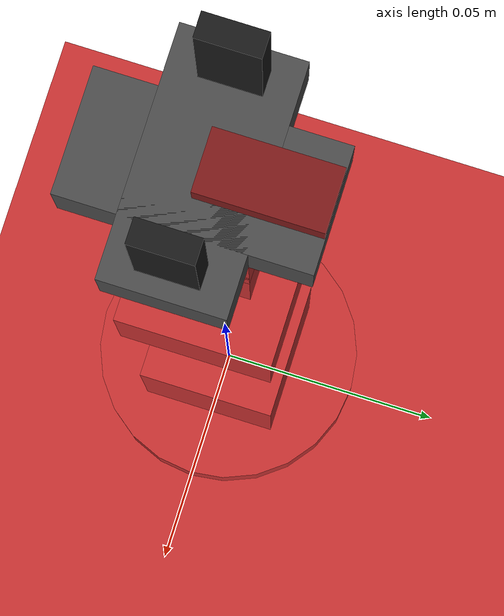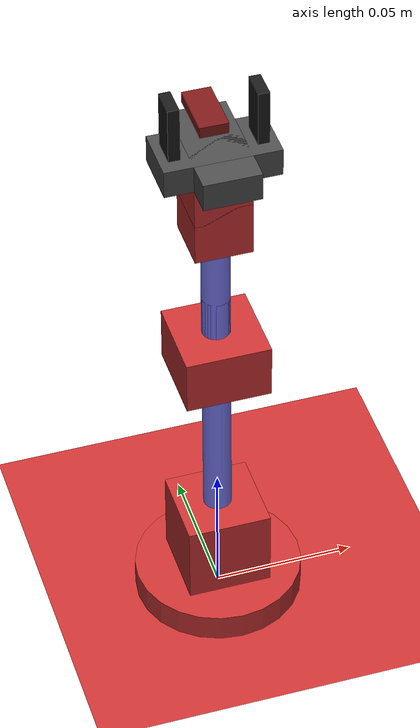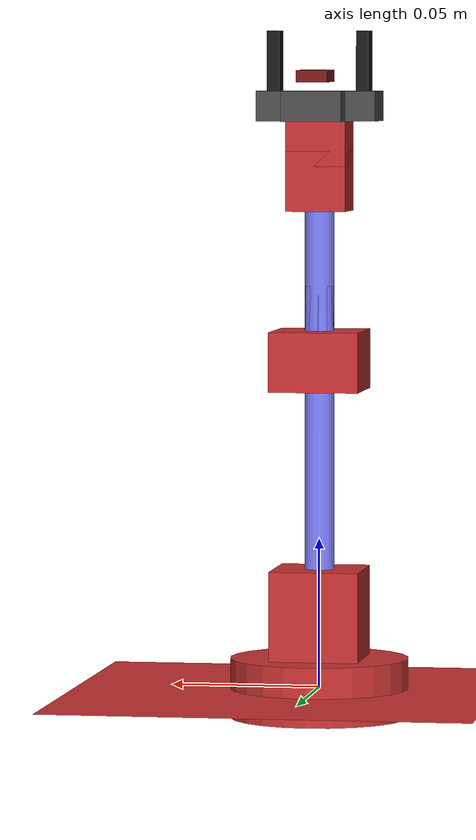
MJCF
<mujoco model="tinyarm_scene">
    <include file="follower_arm.xml"/>
    <include file="leader_arm.xml"/>

    <statistic extent="0.5" center="0 0 0.1"/>

    <visual>
        <headlight ambient=".4 .4 .4" diffuse=".8 .8 .8" specular="0.1 0.1 0.1"/>
        <map znear=".01"/>
        <quality shadowsize="2048"/>
    </visual>

    <asset>
        <texture type="skybox" builtin="gradient" rgb1="0.3 0.5 0.7" rgb2="0 0 0" width="512" height="512"/>
        <texture name="texplane" builtin="checker" rgb1=".2 .3 .4" rgb2=".1 .2 .3" type="2d" width="512" height="512"/>
        <material name="matplane" reflectance="0.3" texture="texplane" texrepeat="1 1" texuniform="true"/>
    </asset>

    <worldbody>
        <light directional="true" diffuse=".8 .8 .8" specular=".2 .2 .2" pos="0 0 5" dir="0 0 -1"/>
        <geom name="floor" pos="0 0 0" size="0 0 .25" type="plane" material="matplane"/>

        <!-- Position the arms in the scene -->
        <body name="follower_container" pos="-0.2 0 0">
            <include file="follower_arm.xml"/>
        </body>

        <body name="leader_container" pos="0.2 0 0">
            <include file="leader_arm.xml"/>
        </body>
    </worldbody>
</mujoco>

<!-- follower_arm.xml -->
<mujoco model="follower_arm">
    <default>
        <joint armature="1" damping="1" limited="true"/>
        <geom conaffinity="0" condim="3" density="5.0" friction="1 0.5 0.5" margin="0.001" rgba="0.2 0.2 0.8 1"/>
        <position kp="10"/>
    </default>

    <worldbody>
        <body name="f_base" pos="0 0 0">
            <geom name="f_base_geom" type="cylinder" size="0.03 0.01"/>
            <joint name="f_joint1" type="hinge" axis="0 0 1" range="-170 170"/>

            <body name="f_shoulder" pos="0 0 0.02">
                <geom name="f_shoulder_geom" type="box" size="0.015 0.015 0.02"/>
                <joint name="f_joint2" type="hinge" axis="0 1 0" range="-90 90"/>

                <body name="f_upper_arm" pos="0 0 0.04">
                    <geom name="f_upper_arm_geom" type="cylinder" size="0.005 0.05" rgba="0.5 0.5 1 1" pos="0 0 0.025"/>
                    <body name="f_elbow" pos="0 0 0.05">
                        <geom name="f_elbow_geom" type="box" size="0.015 0.015 0.01"/>
                        <joint name="f_joint3" type="hinge" axis="0 1 0" range="-120 120"/>

                        <body name="f_forearm" pos="0 0 0.02">
                            <geom name="f_forearm_geom" type="cylinder" size="0.005 0.04" rgba="0.5 0.5 1 1" pos="0 0 0.02"/>
                            <body name="f_wrist" pos="0 0 0.04">
                                <geom name="f_wrist_geom" type="box" size="0.01 0.01 0.01"/>
                                <joint name="f_joint4" type="hinge" axis="0 1 0" range="-90 90"/>

                                <body name="f_wrist_roll" pos="0 0 0.015">
                                    <geom name="f_wrist_roll_geom" type="box" size="0.01 0.01 0.01"/>
                                    <joint name="f_joint5" type="hinge" axis="0 0 1" range="-170 170"/>

                                    <body name="f_gripper" pos="0 0 0.01">
                                        <geom name="f_gripper_palm" type="box" size="0.02 0.01 0.005" rgba="0.3 0.3 0.3 1"/>
                                        <body name="f_left_finger" pos="-0.015 0 0.01">
                                            <geom name="f_left_finger_geom" type="box" size="0.002 0.005 0.015" rgba="0.1 0.1 0.1 1"/>
                                            <joint name="f_joint6_l" type="hinge" axis="0 1 0" range="0 45"/>
                                        </body>
                                        <body name="f_right_finger" pos="0.015 0 0.01">
                                            <geom name="f_right_finger_geom" type="box" size="0.002 0.005 0.015" rgba="0.1 0.1 0.1 1"/>
                                            <joint name="f_joint6_r" type="hinge" axis="0 -1 0" range="0 45"/>
                                        </body>
                                    </body>
                                </body>
                            </body>
                        </body>
                    </body>
                </body>
            </body>
        </body>
    </worldbody>

    <actuator>
        <position name="f_motor1" joint="f_joint1"/>
        <position name="f_motor2" joint="f_joint2"/>
        <position name="f_motor3" joint="f_joint3"/>
        <position name="f_motor4" joint="f_joint4"/>
        <position name="f_motor5" joint="f_joint5"/>
        <position name="f_motor6" joint="f_joint6_l" kp="5"/>
        <position name="f_motor7" joint="f_joint6_r" kp="5"/>
    </actuator>
</mujoco>

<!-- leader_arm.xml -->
<mujoco model="leader_arm">
    <default>
        <joint armature="1" damping="1" limited="true"/>
        <geom conaffinity="0" condim="3" density="5.0" friction="1 0.5 0.5" margin="0.001" rgba="0.8 0.2 0.2 1"/>
        <position kp="1"/>
    </default>

    <worldbody>
        <body name="l_base" pos="0 0 0">
            <geom name="l_base_geom" type="cylinder" size="0.03 0.01"/>
            <joint name="l_joint1" type="hinge" axis="0 0 1" range="-170 170"/>

            <body name="l_shoulder" pos="0 0 0.02">
                <geom name="l_shoulder_geom" type="box" size="0.015 0.015 0.02"/>
                <joint name="l_joint2" type="hinge" axis="0 1 0" range="-90 90"/>

                <body name="l_upper_arm" pos="0 0 0.04">
                    <geom name="l_upper_arm_geom" type="cylinder" size="0.005 0.05" rgba="1 0.5 0.5 1" pos="0 0 0.025"/>
                    <body name="l_elbow" pos="0 0 0.05">
                        <geom name="l_elbow_geom" type="box" size="0.015 0.015 0.01"/>
                        <joint name="l_joint3" type="hinge" axis="0 1 0" range="-120 120"/>

                        <body name="l_forearm" pos="0 0 0.02">
                            <geom name="l_forearm_geom" type="cylinder" size="0.005 0.04" rgba="1 0.5 0.5 1" pos="0 0 0.02"/>
                            <body name="l_wrist" pos="0 0 0.04">
                                <geom name="l_wrist_geom" type="box" size="0.01 0.01 0.01"/>
                                <joint name="l_joint4" type="hinge" axis="0 1 0" range="-90 90"/>

                                <body name="l_wrist_roll" pos="0 0 0.015">
                                    <geom name="l_wrist_roll_geom" type="box" size="0.01 0.01 0.01"/>
                                    <joint name="l_joint5" type="hinge" axis="0 0 1" range="-170 170"/>

                                    <body name="l_trigger" pos="0 0 0.01">
                                        <geom name="l_handle" type="box" size="0.01 0.02 0.005" rgba="0.3 0.3 0.3 1"/>
                                        <body name="l_trigger_finger" pos="0 0.01 0.01">
                                            <geom name="l_trigger_geom" type="box" size="0.005 0.01 0.002" rgba="0.5 0.1 0.1 1"/>
                                            <joint name="l_joint6_trigger" type="hinge" axis="1 0 0" range="0 30"/>
                                        </body>
                                    </body>
                                </body>
                            </body>
                        </body>
                    </body>
                </body>
            </body>
        </body>
    </worldbody>

    <actuator>
        <position name="l_motor1" joint="l_joint1"/>
        <position name="l_motor2" joint="l_joint2"/>
        <position name="l_motor3" joint="l_joint3"/>
        <position name="l_motor4" joint="l_joint4"/>
        <position name="l_motor5" joint="l_joint5"/>
        <position name="l_motor6" joint="l_joint6_trigger"/>
    </actuator>
</mujoco>
